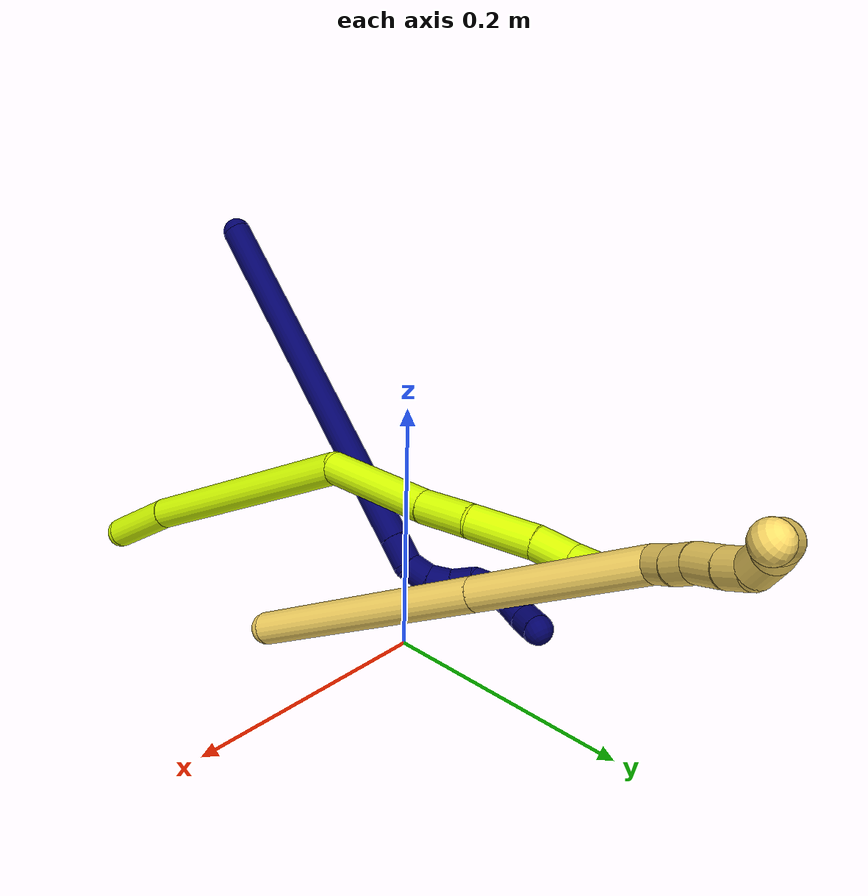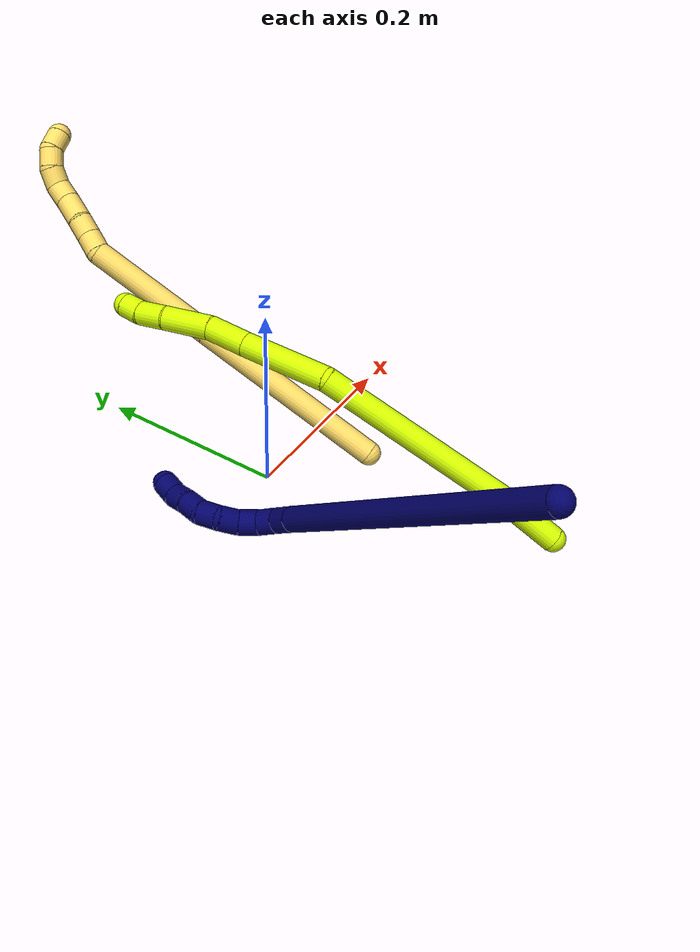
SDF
<sdf version="1.7">
 <world name="default">
  <model name="photoneo_s_sensor">
   <static>1</static>
   <pose>0 0 2 1.57079 1.57079 3.14159</pose>
   <link name="link">
    <inertial><mass>0.1</mass></inertial>
    <sensor name="sensor" type="depth">
     <update_rate>30</update_rate>
     <camera>
      <horizontal_fov>1.22</horizontal_fov>
      <image><width>1920</width><height>1200</height><format>B8G8R8</format></image>
      <clip><near>0.1</near><far>4</far></clip>
      <depth_camera><output>points</output></depth_camera>
     </camera>
     <plugin name="camera_plugin" filename="libgazebo_ros_depth_camera.so">
      <baseline>0.2</baseline>
      <alwaysOn>1</alwaysOn>
      <updateRate>0.0</updateRate>
      <cameraName>camera_ir</cameraName>
      <imageTopicName>/camera/color/image_raw</imageTopicName>
      <cameraInfoTopicName>/camera/color/camera_info</cameraInfoTopicName>
      <depthImageTopicName>/camera/depth/image_raw</depthImageTopicName>
      <depthImageCameraInfoTopicName>/camera/depth/camera_info</depthImageCameraInfoTopicName>
      <pointCloudTopicName>/camera/depth/points</pointCloudTopicName>
      <frameName>fr_optical</frameName>
      <pointCloudCutoff>0.1</pointCloudCutoff>
      <pointCloudCutoffMax>2.0</pointCloudCutoffMax>
      <distortionK1>0</distortionK1>
      <distortionK2>0</distortionK2>
      <distortionK3>0</distortionK3>
      <distortionT1>0</distortionT1>
      <distortionT2>0</distortionT2>
      <CxPrime>0</CxPrime>
      <Cx>0</Cx>
      <Cy>0</Cy>
      <focalLength>0</focalLength>
      <hackBaseline>0</hackBaseline>
     </plugin>
    </sensor>
   </link>
  </model>
  <model name="bin">
   <static>1</static>
   <link name="bottom">
    <collision name="collision-bottom">
     <pose>0 0 -0.01 0 -0 0</pose>
     <geometry><box><size>0.8 0.6 0.02</size></box></geometry>
     <surface>
      <friction><ode><mu>100</mu><mu2>100</mu2></ode></friction>
      <contact><collide_bitmask>65535</collide_bitmask></contact>
     </surface>
    </collision>
   </link>
   <link name="west_wall">
    <collision name="collision-west_wall">
     <pose>-0.41 0 0.1 0 -0 0</pose>
     <geometry><box><size>0.02 0.6 0.2</size></box></geometry>
     <surface>
      <friction><ode><mu>100</mu><mu2>100</mu2></ode></friction>
      <contact><collide_bitmask>65535</collide_bitmask></contact>
     </surface>
    </collision>
   </link>
   <link name="east_wall">
    <collision name="collision-east_wall">
     <pose>0.41 0 0.1 0 -0 0</pose>
     <geometry><box><size>0.02 0.6 0.2</size></box></geometry>
     <surface>
      <friction><ode><mu>100</mu><mu2>100</mu2></ode></friction>
      <contact><collide_bitmask>65535</collide_bitmask></contact>
     </surface>
    </collision>
   </link>
   <link name="south_wall">
    <collision name="collision-south_wall">
     <pose>0 -0.31 0.1 0 -0 0</pose>
     <geometry><box><size>0.8 0.02 0.2</size></box></geometry>
     <surface>
      <friction><ode><mu>100</mu><mu2>100</mu2></ode></friction>
      <contact><collide_bitmask>65535</collide_bitmask></contact>
     </surface>
    </collision>
   </link>
   <link name="north_wall">
    <collision name="collision-north_wall">
     <pose>0 0.31 0.1 0 -0 0</pose>
     <geometry><box><size>0.8 0.02 0.2</size></box></geometry>
     <surface>
      <friction><ode><mu>100</mu><mu2>100</mu2></ode></friction>
      <contact><collide_bitmask>65535</collide_bitmask></contact>
     </surface>
    </collision>
   </link>
  </model>
  <model name="5">
   <static>0</static>
   <link name="5">
    <collision name="collision-cylinder-e_1_1_4">
     <pose>-0.010152 0.041496 0.095689 -0.409178 -0.097033 0.020149</pose>
     <geometry><cylinder><radius>0.0125</radius><length>0.209584</length></cylinder></geometry>
     <surface>
      <friction><ode><mu>1.16</mu><mu2>1.16</mu2><slip1>0</slip1><slip2>0</slip2></ode></friction>
      <contact><ode><kp>1e+06</kp><kd>1</kd><max_vel>0</max_vel><min_depth>0.001</min_depth></ode></contact>
     </surface>
    </collision>
    <visual name="visual-cylinder-e_1_1_4">
     <pose>-0.010152 0.041496 0.095689 -0.409178 -0.097033 0.020149</pose>
     <geometry><cylinder><radius>0.0125</radius><length>0.209584</length></cylinder></geometry>
     <material><ambient>1 0.858824 0.4 1</ambient></material>
    </visual>
    <collision name="collision-cylinder-e_2_4_5">
     <pose>-0.027065 0.11046 0.254803 -0.408695 -0.097501 0.020221</pose>
     <geometry><cylinder><radius>0.0125</radius><length>0.138895</length></cylinder></geometry>
     <surface>
      <friction><ode><mu>1.16</mu><mu2>1.16</mu2><slip1>0</slip1><slip2>0</slip2></ode></friction>
      <contact><ode><kp>1e+06</kp><kd>1</kd><max_vel>0</max_vel><min_depth>0.001</min_depth></ode></contact>
     </surface>
    </collision>
    <visual name="visual-cylinder-e_2_4_5">
     <pose>-0.027065 0.11046 0.254803 -0.408695 -0.097501 0.020221</pose>
     <geometry><cylinder><radius>0.0125</radius><length>0.138895</length></cylinder></geometry>
     <material><ambient>1 0.858824 0.4 1</ambient></material>
    </visual>
    <collision name="collision-cylinder-e_3_5_6">
     <pose>-0.029735 0.14075 0.327585 -0.292871 0.396432 -0.059231</pose>
     <geometry><cylinder><radius>0.0125</radius><length>0.02119</length></cylinder></geometry>
     <surface>
      <friction><ode><mu>1.16</mu><mu2>1.16</mu2><slip1>0</slip1><slip2>0</slip2></ode></friction>
      <contact><ode><kp>1e+06</kp><kd>1</kd><max_vel>0</max_vel><min_depth>0.001</min_depth></ode></contact>
     </surface>
    </collision>
    <visual name="visual-cylinder-e_3_5_6">
     <pose>-0.029735 0.14075 0.327585 -0.292871 0.396432 -0.059231</pose>
     <geometry><cylinder><radius>0.0125</radius><length>0.02119</length></cylinder></geometry>
     <material><ambient>1 0.858824 0.4 1</ambient></material>
    </visual>
    <collision name="collision-cylinder-e_4_6_7">
     <pose>-0.022459 0.145921 0.34677 -0.234677 0.305304 -0.036267</pose>
     <geometry><cylinder><radius>0.0125</radius><length>0.021189</length></cylinder></geometry>
     <surface>
      <friction><ode><mu>1.16</mu><mu2>1.16</mu2><slip1>0</slip1><slip2>0</slip2></ode></friction>
      <contact><ode><kp>1e+06</kp><kd>1</kd><max_vel>0</max_vel><min_depth>0.001</min_depth></ode></contact>
     </surface>
    </collision>
    <visual name="visual-cylinder-e_4_6_7">
     <pose>-0.022459 0.145921 0.34677 -0.234677 0.305304 -0.036267</pose>
     <geometry><cylinder><radius>0.0125</radius><length>0.021189</length></cylinder></geometry>
     <material><ambient>1 0.858824 0.4 1</ambient></material>
    </visual>
    <collision name="collision-cylinder-e_5_7_8">
     <pose>-0.013757 0.152759 0.368503 -0.360512 0.409172 -0.075587</pose>
     <geometry><cylinder><radius>0.0125</radius><length>0.027735</length></cylinder></geometry>
     <surface>
      <friction><ode><mu>1.16</mu><mu2>1.16</mu2><slip1>0</slip1><slip2>0</slip2></ode></friction>
      <contact><ode><kp>1e+06</kp><kd>1</kd><max_vel>0</max_vel><min_depth>0.001</min_depth></ode></contact>
     </surface>
    </collision>
    <visual name="visual-cylinder-e_5_7_8">
     <pose>-0.013757 0.152759 0.368503 -0.360512 0.409172 -0.075587</pose>
     <geometry><cylinder><radius>0.0125</radius><length>0.027735</length></cylinder></geometry>
     <material><ambient>1 0.858824 0.4 1</ambient></material>
    </visual>
    <collision name="collision-cylinder-e_6_8_9">
     <pose>-0.004842 0.160571 0.389838 -0.338928 0.327549 -0.056537</pose>
     <geometry><cylinder><radius>0.0125</radius><length>0.021122</length></cylinder></geometry>
     <surface>
      <friction><ode><mu>1.16</mu><mu2>1.16</mu2><slip1>0</slip1><slip2>0</slip2></ode></friction>
      <contact><ode><kp>1e+06</kp><kd>1</kd><max_vel>0</max_vel><min_depth>0.001</min_depth></ode></contact>
     </surface>
    </collision>
    <visual name="visual-cylinder-e_6_8_9">
     <pose>-0.004842 0.160571 0.389838 -0.338928 0.327549 -0.056537</pose>
     <geometry><cylinder><radius>0.0125</radius><length>0.021122</length></cylinder></geometry>
     <material><ambient>1 0.858824 0.4 1</ambient></material>
    </visual>
    <collision name="collision-cylinder-e_7_9_10">
     <pose>4.2e-05 0.16256 0.40909 0.13523 0.148879 0.0101</pose>
     <geometry><cylinder><radius>0.0125</radius><length>0.020045</length></cylinder></geometry>
     <surface>
      <friction><ode><mu>1.16</mu><mu2>1.16</mu2><slip1>0</slip1><slip2>0</slip2></ode></friction>
      <contact><ode><kp>1e+06</kp><kd>1</kd><max_vel>0</max_vel><min_depth>0.001</min_depth></ode></contact>
     </surface>
    </collision>
    <visual name="visual-cylinder-e_7_9_10">
     <pose>4.2e-05 0.16256 0.40909 0.13523 0.148879 0.0101</pose>
     <geometry><cylinder><radius>0.0125</radius><length>0.020045</length></cylinder></geometry>
     <material><ambient>1 0.858824 0.4 1</ambient></material>
    </visual>
    <collision name="collision-cylinder-e_8_10_11">
     <pose>0.006432 0.158661 0.427343 0.295084 0.507752 0.077089</pose>
     <geometry><cylinder><radius>0.0125</radius><length>0.02017</length></cylinder></geometry>
     <surface>
      <friction><ode><mu>1.16</mu><mu2>1.16</mu2><slip1>0</slip1><slip2>0</slip2></ode></friction>
      <contact><ode><kp>1e+06</kp><kd>1</kd><max_vel>0</max_vel><min_depth>0.001</min_depth></ode></contact>
     </surface>
    </collision>
    <visual name="visual-cylinder-e_8_10_11">
     <pose>0.006432 0.158661 0.427343 0.295084 0.507752 0.077089</pose>
     <geometry><cylinder><radius>0.0125</radius><length>0.02017</length></cylinder></geometry>
     <material><ambient>1 0.858824 0.4 1</ambient></material>
    </visual>
    <collision name="collision-cylinder-e_9_11_2">
     <pose>0.01958 0.153012 0.440592 0.569756 0.964175 0.304105</pose>
     <geometry><cylinder><radius>0.0125</radius><length>0.02007</length></cylinder></geometry>
     <surface>
      <friction><ode><mu>1.16</mu><mu2>1.16</mu2><slip1>0</slip1><slip2>0</slip2></ode></friction>
      <contact><ode><kp>1e+06</kp><kd>1</kd><max_vel>0</max_vel><min_depth>0.001</min_depth></ode></contact>
     </surface>
    </collision>
    <visual name="visual-cylinder-e_9_11_2">
     <pose>0.01958 0.153012 0.440592 0.569756 0.964175 0.304105</pose>
     <geometry><cylinder><radius>0.0125</radius><length>0.02007</length></cylinder></geometry>
     <material><ambient>1 0.858824 0.4 1</ambient></material>
    </visual>
    <collision name="collision-sphere-2">
     <pose>0.027824 0.149926 0.445409 0 -0 0</pose>
     <geometry><sphere><radius>0.0125</radius></sphere></geometry>
     <surface>
      <friction><ode><mu>1.16</mu><mu2>1.16</mu2><slip1>0</slip1><slip2>0</slip2></ode></friction>
      <contact><ode><kp>1e+06</kp><kd>1</kd><max_vel>0</max_vel><min_depth>0.001</min_depth></ode></contact>
     </surface>
    </collision>
    <visual name="visual-sphere-2">
     <pose>0.027824 0.149926 0.445409 0 -0 0</pose>
     <geometry><sphere><radius>0.0125</radius></sphere></geometry>
     <material><ambient>1 0.858824 0.4 1</ambient></material>
    </visual>
    <collision name="collision-sphere-11">
     <pose>0.011335 0.156098 0.435775 0 -0 0</pose>
     <geometry><sphere><radius>0.0125</radius></sphere></geometry>
     <surface>
      <friction><ode><mu>1.16</mu><mu2>1.16</mu2><slip1>0</slip1><slip2>0</slip2></ode></friction>
      <contact><ode><kp>1e+06</kp><kd>1</kd><max_vel>0</max_vel><min_depth>0.001</min_depth></ode></contact>
     </surface>
    </collision>
    <visual name="visual-sphere-11">
     <pose>0.011335 0.156098 0.435775 0 -0 0</pose>
     <geometry><sphere><radius>0.0125</radius></sphere></geometry>
     <material><ambient>1 0.858824 0.4 1</ambient></material>
    </visual>
    <collision name="collision-sphere-10">
     <pose>0.001529 0.161223 0.418912 0 -0 0</pose>
     <geometry><sphere><radius>0.0125</radius></sphere></geometry>
     <surface>
      <friction><ode><mu>1.16</mu><mu2>1.16</mu2><slip1>0</slip1><slip2>0</slip2></ode></friction>
      <contact><ode><kp>1e+06</kp><kd>1</kd><max_vel>0</max_vel><min_depth>0.001</min_depth></ode></contact>
     </surface>
    </collision>
    <visual name="visual-sphere-10">
     <pose>0.001529 0.161223 0.418912 0 -0 0</pose>
     <geometry><sphere><radius>0.0125</radius></sphere></geometry>
     <material><ambient>1 0.858824 0.4 1</ambient></material>
    </visual>
    <collision name="collision-sphere-9">
     <pose>-0.001445 0.163896 0.399269 0 -0 0</pose>
     <geometry><sphere><radius>0.0125</radius></sphere></geometry>
     <surface>
      <friction><ode><mu>1.16</mu><mu2>1.16</mu2><slip1>0</slip1><slip2>0</slip2></ode></friction>
      <contact><ode><kp>1e+06</kp><kd>1</kd><max_vel>0</max_vel><min_depth>0.001</min_depth></ode></contact>
     </surface>
    </collision>
    <visual name="visual-sphere-9">
     <pose>-0.001445 0.163896 0.399269 0 -0 0</pose>
     <geometry><sphere><radius>0.0125</radius></sphere></geometry>
     <material><ambient>1 0.858824 0.4 1</ambient></material>
    </visual>
    <collision name="collision-sphere-4">
     <pose>-0.020305 0.082992 0.191378 0 -0 0</pose>
     <geometry><sphere><radius>0.0125</radius></sphere></geometry>
     <surface>
      <friction><ode><mu>1.16</mu><mu2>1.16</mu2><slip1>0</slip1><slip2>0</slip2></ode></friction>
      <contact><ode><kp>1e+06</kp><kd>1</kd><max_vel>0</max_vel><min_depth>0.001</min_depth></ode></contact>
     </surface>
    </collision>
    <visual name="visual-sphere-4">
     <pose>-0.020305 0.082992 0.191378 0 -0 0</pose>
     <geometry><sphere><radius>0.0125</radius></sphere></geometry>
     <material><ambient>1 0.858824 0.4 1</ambient></material>
    </visual>
    <collision name="collision-sphere-1">
     <geometry><sphere><radius>0.0125</radius></sphere></geometry>
     <surface>
      <friction><ode><mu>1.16</mu><mu2>1.16</mu2><slip1>0</slip1><slip2>0</slip2></ode></friction>
      <contact><ode><kp>1e+06</kp><kd>1</kd><max_vel>0</max_vel><min_depth>0.001</min_depth></ode></contact>
     </surface>
    </collision>
    <visual name="visual-sphere-1">
     <geometry><sphere><radius>0.0125</radius></sphere></geometry>
     <material><ambient>1 0.858824 0.4 1</ambient></material>
    </visual>
    <collision name="collision-sphere-8">
     <pose>-0.00824 0.157247 0.380408 0 -0 0</pose>
     <geometry><sphere><radius>0.0125</radius></sphere></geometry>
     <surface>
      <friction><ode><mu>1.16</mu><mu2>1.16</mu2><slip1>0</slip1><slip2>0</slip2></ode></friction>
      <contact><ode><kp>1e+06</kp><kd>1</kd><max_vel>0</max_vel><min_depth>0.001</min_depth></ode></contact>
     </surface>
    </collision>
    <visual name="visual-sphere-8">
     <pose>-0.00824 0.157247 0.380408 0 -0 0</pose>
     <geometry><sphere><radius>0.0125</radius></sphere></geometry>
     <material><ambient>1 0.858824 0.4 1</ambient></material>
    </visual>
    <collision name="collision-sphere-5">
     <pose>-0.033826 0.137928 0.318228 0 -0 0</pose>
     <geometry><sphere><radius>0.0125</radius></sphere></geometry>
     <surface>
      <friction><ode><mu>1.16</mu><mu2>1.16</mu2><slip1>0</slip1><slip2>0</slip2></ode></friction>
      <contact><ode><kp>1e+06</kp><kd>1</kd><max_vel>0</max_vel><min_depth>0.001</min_depth></ode></contact>
     </surface>
    </collision>
    <visual name="visual-sphere-5">
     <pose>-0.033826 0.137928 0.318228 0 -0 0</pose>
     <geometry><sphere><radius>0.0125</radius></sphere></geometry>
     <material><ambient>1 0.858824 0.4 1</ambient></material>
    </visual>
    <collision name="collision-sphere-6">
     <pose>-0.025644 0.143571 0.336942 0 -0 0</pose>
     <geometry><sphere><radius>0.0125</radius></sphere></geometry>
     <surface>
      <friction><ode><mu>1.16</mu><mu2>1.16</mu2><slip1>0</slip1><slip2>0</slip2></ode></friction>
      <contact><ode><kp>1e+06</kp><kd>1</kd><max_vel>0</max_vel><min_depth>0.001</min_depth></ode></contact>
     </surface>
    </collision>
    <visual name="visual-sphere-6">
     <pose>-0.025644 0.143571 0.336942 0 -0 0</pose>
     <geometry><sphere><radius>0.0125</radius></sphere></geometry>
     <material><ambient>1 0.858824 0.4 1</ambient></material>
    </visual>
    <collision name="collision-sphere-7">
     <pose>-0.019275 0.148271 0.356598 0 -0 0</pose>
     <geometry><sphere><radius>0.0125</radius></sphere></geometry>
     <surface>
      <friction><ode><mu>1.16</mu><mu2>1.16</mu2><slip1>0</slip1><slip2>0</slip2></ode></friction>
      <contact><ode><kp>1e+06</kp><kd>1</kd><max_vel>0</max_vel><min_depth>0.001</min_depth></ode></contact>
     </surface>
    </collision>
    <visual name="visual-sphere-7">
     <pose>-0.019275 0.148271 0.356598 0 -0 0</pose>
     <geometry><sphere><radius>0.0125</radius></sphere></geometry>
     <material><ambient>1 0.858824 0.4 1</ambient></material>
    </visual>
    <inertial>
     <pose>-0.013907 0.094543 0.227704 0 -0 0</pose>
     <mass>0.5</mass>
     <inertia>
      <ixx>0.001032</ixx>
      <ixy>0</ixy>
      <ixz>0</ixz>
      <iyy>0.000965</iyy>
      <iyz>0</iyz>
      <izz>-0.000271</izz>
     </inertia>
    </inertial>
   </link>
   <pose>0.076866 -0.074171 0.014382 -0.681131 0.169057 0.148665</pose>
  </model>
  <model name="7">
   <static>0</static>
   <link name="7">
    <collision name="collision-cylinder-e_1_1_4">
     <pose>0.000144 0.003424 -0.166875 -3.12108 0.000861 -0.083895</pose>
     <geometry><cylinder><radius>0.0125</radius><length>0.33382</length></cylinder></geometry>
     <surface>
      <friction><ode><mu>1.16</mu><mu2>1.16</mu2><slip1>0</slip1><slip2>0</slip2></ode></friction>
      <contact><ode><kp>1e+06</kp><kd>1</kd><max_vel>0</max_vel><min_depth>0.001</min_depth></ode></contact>
     </surface>
    </collision>
    <visual name="visual-cylinder-e_1_1_4">
     <pose>0.000144 0.003424 -0.166875 -3.12108 0.000861 -0.083895</pose>
     <geometry><cylinder><radius>0.0125</radius><length>0.33382</length></cylinder></geometry>
     <material><ambient>0.003922 0 0.403922 1</ambient></material>
    </visual>
    <collision name="collision-cylinder-e_2_4_5">
     <pose>0.000253 0.006962 -0.346483 -3.13257 -0.002707 0.582628</pose>
     <geometry><cylinder><radius>0.0125</radius><length>0.025468</length></cylinder></geometry>
     <surface>
      <friction><ode><mu>1.16</mu><mu2>1.16</mu2><slip1>0</slip1><slip2>0</slip2></ode></friction>
      <contact><ode><kp>1e+06</kp><kd>1</kd><max_vel>0</max_vel><min_depth>0.001</min_depth></ode></contact>
     </surface>
    </collision>
    <visual name="visual-cylinder-e_2_4_5">
     <pose>0.000253 0.006962 -0.346483 -3.13257 -0.002707 0.582628</pose>
     <geometry><cylinder><radius>0.0125</radius><length>0.025468</length></cylinder></geometry>
     <material><ambient>0.003922 0 0.403922 1</ambient></material>
    </visual>
    <collision name="collision-cylinder-e_3_5_6">
     <pose>-0.003316 0.010573 -0.368182 -2.76978 -0.351979 1.5148</pose>
     <geometry><cylinder><radius>0.0125</radius><length>0.020502</length></cylinder></geometry>
     <surface>
      <friction><ode><mu>1.16</mu><mu2>1.16</mu2><slip1>0</slip1><slip2>0</slip2></ode></friction>
      <contact><ode><kp>1e+06</kp><kd>1</kd><max_vel>0</max_vel><min_depth>0.001</min_depth></ode></contact>
     </surface>
    </collision>
    <visual name="visual-cylinder-e_3_5_6">
     <pose>-0.003316 0.010573 -0.368182 -2.76978 -0.351979 1.5148</pose>
     <geometry><cylinder><radius>0.0125</radius><length>0.020502</length></cylinder></geometry>
     <material><ambient>0.003922 0 0.403922 1</ambient></material>
    </visual>
    <collision name="collision-cylinder-e_4_6_7">
     <pose>-0.011549 0.020289 -0.383533 -2.36931 -0.48517 1.09356</pose>
     <geometry><cylinder><radius>0.0125</radius><length>0.020155</length></cylinder></geometry>
     <surface>
      <friction><ode><mu>1.16</mu><mu2>1.16</mu2><slip1>0</slip1><slip2>0</slip2></ode></friction>
      <contact><ode><kp>1e+06</kp><kd>1</kd><max_vel>0</max_vel><min_depth>0.001</min_depth></ode></contact>
     </surface>
    </collision>
    <visual name="visual-cylinder-e_4_6_7">
     <pose>-0.011549 0.020289 -0.383533 -2.36931 -0.48517 1.09356</pose>
     <geometry><cylinder><radius>0.0125</radius><length>0.020155</length></cylinder></geometry>
     <material><ambient>0.003922 0 0.403922 1</ambient></material>
    </visual>
    <collision name="collision-cylinder-e_5_7_8">
     <pose>-0.02004 0.034892 -0.393857 -2.01006 -0.388491 0.600847</pose>
     <geometry><cylinder><radius>0.0125</radius><length>0.020016</length></cylinder></geometry>
     <surface>
      <friction><ode><mu>1.16</mu><mu2>1.16</mu2><slip1>0</slip1><slip2>0</slip2></ode></friction>
      <contact><ode><kp>1e+06</kp><kd>1</kd><max_vel>0</max_vel><min_depth>0.001</min_depth></ode></contact>
     </surface>
    </collision>
    <visual name="visual-cylinder-e_5_7_8">
     <pose>-0.02004 0.034892 -0.393857 -2.01006 -0.388491 0.600847</pose>
     <geometry><cylinder><radius>0.0125</radius><length>0.020016</length></cylinder></geometry>
     <material><ambient>0.003922 0 0.403922 1</ambient></material>
    </visual>
    <collision name="collision-cylinder-e_6_8_9">
     <pose>-0.025154 0.049891 -0.405194 -2.41194 -0.132521 0.344059</pose>
     <geometry><cylinder><radius>0.0125</radius><length>0.020024</length></cylinder></geometry>
     <surface>
      <friction><ode><mu>1.16</mu><mu2>1.16</mu2><slip1>0</slip1><slip2>0</slip2></ode></friction>
      <contact><ode><kp>1e+06</kp><kd>1</kd><max_vel>0</max_vel><min_depth>0.001</min_depth></ode></contact>
     </surface>
    </collision>
    <visual name="visual-cylinder-e_6_8_9">
     <pose>-0.025154 0.049891 -0.405194 -2.41194 -0.132521 0.344059</pose>
     <geometry><cylinder><radius>0.0125</radius><length>0.020024</length></cylinder></geometry>
     <material><ambient>0.003922 0 0.403922 1</ambient></material>
    </visual>
    <collision name="collision-cylinder-e_7_9_10">
     <pose>-0.024092 0.062001 -0.420606 -2.5406 0.240624 -0.743946</pose>
     <geometry><cylinder><radius>0.0125</radius><length>0.020011</length></cylinder></geometry>
     <surface>
      <friction><ode><mu>1.16</mu><mu2>1.16</mu2><slip1>0</slip1><slip2>0</slip2></ode></friction>
      <contact><ode><kp>1e+06</kp><kd>1</kd><max_vel>0</max_vel><min_depth>0.001</min_depth></ode></contact>
     </surface>
    </collision>
    <visual name="visual-cylinder-e_7_9_10">
     <pose>-0.024092 0.062001 -0.420606 -2.5406 0.240624 -0.743946</pose>
     <geometry><cylinder><radius>0.0125</radius><length>0.020011</length></cylinder></geometry>
     <material><ambient>0.003922 0 0.403922 1</ambient></material>
    </visual>
    <collision name="collision-cylinder-e_8_10_11">
     <pose>-0.019726 0.071358 -0.43763 -2.73661 0.199538 -0.90731</pose>
     <geometry><cylinder><radius>0.0125</radius><length>0.020001</length></cylinder></geometry>
     <surface>
      <friction><ode><mu>1.16</mu><mu2>1.16</mu2><slip1>0</slip1><slip2>0</slip2></ode></friction>
      <contact><ode><kp>1e+06</kp><kd>1</kd><max_vel>0</max_vel><min_depth>0.001</min_depth></ode></contact>
     </surface>
    </collision>
    <visual name="visual-cylinder-e_8_10_11">
     <pose>-0.019726 0.071358 -0.43763 -2.73661 0.199538 -0.90731</pose>
     <geometry><cylinder><radius>0.0125</radius><length>0.020001</length></cylinder></geometry>
     <material><ambient>0.003922 0 0.403922 1</ambient></material>
    </visual>
    <collision name="collision-cylinder-e_9_11_2">
     <pose>-0.01386 0.080863 -0.453926 -2.48272 0.398806 -1.06767</pose>
     <geometry><cylinder><radius>0.0125</radius><length>0.020003</length></cylinder></geometry>
     <surface>
      <friction><ode><mu>1.16</mu><mu2>1.16</mu2><slip1>0</slip1><slip2>0</slip2></ode></friction>
      <contact><ode><kp>1e+06</kp><kd>1</kd><max_vel>0</max_vel><min_depth>0.001</min_depth></ode></contact>
     </surface>
    </collision>
    <visual name="visual-cylinder-e_9_11_2">
     <pose>-0.01386 0.080863 -0.453926 -2.48272 0.398806 -1.06767</pose>
     <geometry><cylinder><radius>0.0125</radius><length>0.020003</length></cylinder></geometry>
     <material><ambient>0.003922 0 0.403922 1</ambient></material>
    </visual>
    <collision name="collision-sphere-2">
     <pose>-0.009976 0.086505 -0.461213 0 -0 0</pose>
     <geometry><sphere><radius>0.0125</radius></sphere></geometry>
     <surface>
      <friction><ode><mu>1.16</mu><mu2>1.16</mu2><slip1>0</slip1><slip2>0</slip2></ode></friction>
      <contact><ode><kp>1e+06</kp><kd>1</kd><max_vel>0</max_vel><min_depth>0.001</min_depth></ode></contact>
     </surface>
    </collision>
    <visual name="visual-sphere-2">
     <pose>-0.009976 0.086505 -0.461213 0 -0 0</pose>
     <geometry><sphere><radius>0.0125</radius></sphere></geometry>
     <material><ambient>0.003922 0 0.403922 1</ambient></material>
    </visual>
    <collision name="collision-sphere-11">
     <pose>-0.017743 0.07522 -0.446639 0 -0 0</pose>
     <geometry><sphere><radius>0.0125</radius></sphere></geometry>
     <surface>
      <friction><ode><mu>1.16</mu><mu2>1.16</mu2><slip1>0</slip1><slip2>0</slip2></ode></friction>
      <contact><ode><kp>1e+06</kp><kd>1</kd><max_vel>0</max_vel><min_depth>0.001</min_depth></ode></contact>
     </surface>
    </collision>
    <visual name="visual-sphere-11">
     <pose>-0.017743 0.07522 -0.446639 0 -0 0</pose>
     <geometry><sphere><radius>0.0125</radius></sphere></geometry>
     <material><ambient>0.003922 0 0.403922 1</ambient></material>
    </visual>
    <collision name="collision-sphere-10">
     <pose>-0.021708 0.067496 -0.42862 0 -0 0</pose>
     <geometry><sphere><radius>0.0125</radius></sphere></geometry>
     <surface>
      <friction><ode><mu>1.16</mu><mu2>1.16</mu2><slip1>0</slip1><slip2>0</slip2></ode></friction>
      <contact><ode><kp>1e+06</kp><kd>1</kd><max_vel>0</max_vel><min_depth>0.001</min_depth></ode></contact>
     </surface>
    </collision>
    <visual name="visual-sphere-10">
     <pose>-0.021708 0.067496 -0.42862 0 -0 0</pose>
     <geometry><sphere><radius>0.0125</radius></sphere></geometry>
     <material><ambient>0.003922 0 0.403922 1</ambient></material>
    </visual>
    <collision name="collision-sphere-9">
     <pose>-0.026477 0.056506 -0.412591 0 -0 0</pose>
     <geometry><sphere><radius>0.0125</radius></sphere></geometry>
     <surface>
      <friction><ode><mu>1.16</mu><mu2>1.16</mu2><slip1>0</slip1><slip2>0</slip2></ode></friction>
      <contact><ode><kp>1e+06</kp><kd>1</kd><max_vel>0</max_vel><min_depth>0.001</min_depth></ode></contact>
     </surface>
    </collision>
    <visual name="visual-sphere-9">
     <pose>-0.026477 0.056506 -0.412591 0 -0 0</pose>
     <geometry><sphere><radius>0.0125</radius></sphere></geometry>
     <material><ambient>0.003922 0 0.403922 1</ambient></material>
    </visual>
    <collision name="collision-sphere-4">
     <pose>0.000287 0.006847 -0.33375 0 -0 0</pose>
     <geometry><sphere><radius>0.0125</radius></sphere></geometry>
     <surface>
      <friction><ode><mu>1.16</mu><mu2>1.16</mu2><slip1>0</slip1><slip2>0</slip2></ode></friction>
      <contact><ode><kp>1e+06</kp><kd>1</kd><max_vel>0</max_vel><min_depth>0.001</min_depth></ode></contact>
     </surface>
    </collision>
    <visual name="visual-sphere-4">
     <pose>0.000287 0.006847 -0.33375 0 -0 0</pose>
     <geometry><sphere><radius>0.0125</radius></sphere></geometry>
     <material><ambient>0.003922 0 0.403922 1</ambient></material>
    </visual>
    <collision name="collision-sphere-1">
     <geometry><sphere><radius>0.0125</radius></sphere></geometry>
     <surface>
      <friction><ode><mu>1.16</mu><mu2>1.16</mu2><slip1>0</slip1><slip2>0</slip2></ode></friction>
      <contact><ode><kp>1e+06</kp><kd>1</kd><max_vel>0</max_vel><min_depth>0.001</min_depth></ode></contact>
     </surface>
    </collision>
    <visual name="visual-sphere-1">
     <geometry><sphere><radius>0.0125</radius></sphere></geometry>
     <material><ambient>0.003922 0 0.403922 1</ambient></material>
    </visual>
    <collision name="collision-sphere-8">
     <pose>-0.023831 0.043275 -0.397796 0 -0 0</pose>
     <geometry><sphere><radius>0.0125</radius></sphere></geometry>
     <surface>
      <friction><ode><mu>1.16</mu><mu2>1.16</mu2><slip1>0</slip1><slip2>0</slip2></ode></friction>
      <contact><ode><kp>1e+06</kp><kd>1</kd><max_vel>0</max_vel><min_depth>0.001</min_depth></ode></contact>
     </surface>
    </collision>
    <visual name="visual-sphere-8">
     <pose>-0.023831 0.043275 -0.397796 0 -0 0</pose>
     <geometry><sphere><radius>0.0125</radius></sphere></geometry>
     <material><ambient>0.003922 0 0.403922 1</ambient></material>
    </visual>
    <collision name="collision-sphere-5">
     <pose>0.000218 0.007077 -0.359217 0 -0 0</pose>
     <geometry><sphere><radius>0.0125</radius></sphere></geometry>
     <surface>
      <friction><ode><mu>1.16</mu><mu2>1.16</mu2><slip1>0</slip1><slip2>0</slip2></ode></friction>
      <contact><ode><kp>1e+06</kp><kd>1</kd><max_vel>0</max_vel><min_depth>0.001</min_depth></ode></contact>
     </surface>
    </collision>
    <visual name="visual-sphere-5">
     <pose>0.000218 0.007077 -0.359217 0 -0 0</pose>
     <geometry><sphere><radius>0.0125</radius></sphere></geometry>
     <material><ambient>0.003922 0 0.403922 1</ambient></material>
    </visual>
    <collision name="collision-sphere-6">
     <pose>-0.00685 0.014069 -0.377147 0 -0 0</pose>
     <geometry><sphere><radius>0.0125</radius></sphere></geometry>
     <surface>
      <friction><ode><mu>1.16</mu><mu2>1.16</mu2><slip1>0</slip1><slip2>0</slip2></ode></friction>
      <contact><ode><kp>1e+06</kp><kd>1</kd><max_vel>0</max_vel><min_depth>0.001</min_depth></ode></contact>
     </surface>
    </collision>
    <visual name="visual-sphere-6">
     <pose>-0.00685 0.014069 -0.377147 0 -0 0</pose>
     <geometry><sphere><radius>0.0125</radius></sphere></geometry>
     <material><ambient>0.003922 0 0.403922 1</ambient></material>
    </visual>
    <collision name="collision-sphere-7">
     <pose>-0.016249 0.026509 -0.389918 0 -0 0</pose>
     <geometry><sphere><radius>0.0125</radius></sphere></geometry>
     <surface>
      <friction><ode><mu>1.16</mu><mu2>1.16</mu2><slip1>0</slip1><slip2>0</slip2></ode></friction>
      <contact><ode><kp>1e+06</kp><kd>1</kd><max_vel>0</max_vel><min_depth>0.001</min_depth></ode></contact>
     </surface>
    </collision>
    <visual name="visual-sphere-7">
     <pose>-0.016249 0.026509 -0.389918 0 -0 0</pose>
     <geometry><sphere><radius>0.0125</radius></sphere></geometry>
     <material><ambient>0.003922 0 0.403922 1</ambient></material>
    </visual>
    <inertial>
     <pose>-0.00461 0.015858 -0.244111 0 -0 0</pose>
     <mass>0.5</mass>
     <inertia>
      <ixx>0.00285</ixx>
      <ixy>0</ixy>
      <ixz>0</ixz>
      <iyy>-0.003358</iyy>
      <iyz>0</iyz>
      <izz>-0.000108</izz>
     </inertia>
    </inertial>
   </link>
   <pose>-0.116944 -0.334785 0.241832 0.858482 -0.282879 0.03551</pose>
  </model>
  <model name="15">
   <static>0</static>
   <link name="15">
    <collision name="collision-cylinder-e_1_1_4">
     <pose>0.001973 0.027099 0.017488 -0.997698 0.061089 -0.033289</pose>
     <geometry><cylinder><radius>0.0125</radius><length>0.064624</length></cylinder></geometry>
     <surface>
      <friction><ode><mu>1.16</mu><mu2>1.16</mu2><slip1>0</slip1><slip2>0</slip2></ode></friction>
      <contact><ode><kp>1e+06</kp><kd>1</kd><max_vel>0</max_vel><min_depth>0.001</min_depth></ode></contact>
     </surface>
    </collision>
    <visual name="visual-cylinder-e_1_1_4">
     <pose>0.001973 0.027099 0.017488 -0.997698 0.061089 -0.033289</pose>
     <geometry><cylinder><radius>0.0125</radius><length>0.064624</length></cylinder></geometry>
     <material><ambient>0.835294 1 0 1</ambient></material>
    </visual>
    <collision name="collision-cylinder-e_2_4_5">
     <pose>0.009675 0.131424 0.097328 -0.891561 0.057662 -0.02756</pose>
     <geometry><cylinder><radius>0.0125</radius><length>0.198841</length></cylinder></geometry>
     <surface>
      <friction><ode><mu>1.16</mu><mu2>1.16</mu2><slip1>0</slip1><slip2>0</slip2></ode></friction>
      <contact><ode><kp>1e+06</kp><kd>1</kd><max_vel>0</max_vel><min_depth>0.001</min_depth></ode></contact>
     </surface>
    </collision>
    <visual name="visual-cylinder-e_2_4_5">
     <pose>0.009675 0.131424 0.097328 -0.891561 0.057662 -0.02756</pose>
     <geometry><cylinder><radius>0.0125</radius><length>0.198841</length></cylinder></geometry>
     <material><ambient>0.835294 1 0 1</ambient></material>
    </visual>
    <collision name="collision-cylinder-e_3_5_6">
     <pose>0.006492 0.228919 0.200718 -0.458777 -0.192317 0.045037</pose>
     <geometry><cylinder><radius>0.0125</radius><length>0.09326</length></cylinder></geometry>
     <surface>
      <friction><ode><mu>1.16</mu><mu2>1.16</mu2><slip1>0</slip1><slip2>0</slip2></ode></friction>
      <contact><ode><kp>1e+06</kp><kd>1</kd><max_vel>0</max_vel><min_depth>0.001</min_depth></ode></contact>
     </surface>
    </collision>
    <visual name="visual-cylinder-e_3_5_6">
     <pose>0.006492 0.228919 0.200718 -0.458777 -0.192317 0.045037</pose>
     <geometry><cylinder><radius>0.0125</radius><length>0.09326</length></cylinder></geometry>
     <material><ambient>0.835294 1 0 1</ambient></material>
    </visual>
    <collision name="collision-cylinder-e_4_6_7">
     <pose>-0.005531 0.2598 0.259927 -0.528548 -0.146734 0.039773</pose>
     <geometry><cylinder><radius>0.0125</radius><length>0.042544</length></cylinder></geometry>
     <surface>
      <friction><ode><mu>1.16</mu><mu2>1.16</mu2><slip1>0</slip1><slip2>0</slip2></ode></friction>
      <contact><ode><kp>1e+06</kp><kd>1</kd><max_vel>0</max_vel><min_depth>0.001</min_depth></ode></contact>
     </surface>
    </collision>
    <visual name="visual-cylinder-e_4_6_7">
     <pose>-0.005531 0.2598 0.259927 -0.528548 -0.146734 0.039773</pose>
     <geometry><cylinder><radius>0.0125</radius><length>0.042544</length></cylinder></geometry>
     <material><ambient>0.835294 1 0 1</ambient></material>
    </visual>
    <collision name="collision-cylinder-e_5_7_8">
     <pose>-0.00822 0.280082 0.301174 -0.396851 0.016796 -0.003377</pose>
     <geometry><cylinder><radius>0.0125</radius><length>0.050047</length></cylinder></geometry>
     <surface>
      <friction><ode><mu>1.16</mu><mu2>1.16</mu2><slip1>0</slip1><slip2>0</slip2></ode></friction>
      <contact><ode><kp>1e+06</kp><kd>1</kd><max_vel>0</max_vel><min_depth>0.001</min_depth></ode></contact>
     </surface>
    </collision>
    <visual name="visual-cylinder-e_5_7_8">
     <pose>-0.00822 0.280082 0.301174 -0.396851 0.016796 -0.003377</pose>
     <geometry><cylinder><radius>0.0125</radius><length>0.050047</length></cylinder></geometry>
     <material><ambient>0.835294 1 0 1</ambient></material>
    </visual>
    <collision name="collision-cylinder-e_6_8_9">
     <pose>-0.009205 0.294246 0.338359 -0.308288 -0.094598 0.014709</pose>
     <geometry><cylinder><radius>0.0125</radius><length>0.02975</length></cylinder></geometry>
     <surface>
      <friction><ode><mu>1.16</mu><mu2>1.16</mu2><slip1>0</slip1><slip2>0</slip2></ode></friction>
      <contact><ode><kp>1e+06</kp><kd>1</kd><max_vel>0</max_vel><min_depth>0.001</min_depth></ode></contact>
     </surface>
    </collision>
    <visual name="visual-cylinder-e_6_8_9">
     <pose>-0.009205 0.294246 0.338359 -0.308288 -0.094598 0.014709</pose>
     <geometry><cylinder><radius>0.0125</radius><length>0.02975</length></cylinder></geometry>
     <material><ambient>0.835294 1 0 1</ambient></material>
    </visual>
    <collision name="collision-cylinder-e_7_9_2">
     <pose>-0.013086 0.303596 0.361406 -0.497837 -0.238768 0.060964</pose>
     <geometry><cylinder><radius>0.0125</radius><length>0.020935</length></cylinder></geometry>
     <surface>
      <friction><ode><mu>1.16</mu><mu2>1.16</mu2><slip1>0</slip1><slip2>0</slip2></ode></friction>
      <contact><ode><kp>1e+06</kp><kd>1</kd><max_vel>0</max_vel><min_depth>0.001</min_depth></ode></contact>
     </surface>
    </collision>
    <visual name="visual-cylinder-e_7_9_2">
     <pose>-0.013086 0.303596 0.361406 -0.497837 -0.238768 0.060964</pose>
     <geometry><cylinder><radius>0.0125</radius><length>0.020935</length></cylinder></geometry>
     <material><ambient>0.835294 1 0 1</ambient></material>
    </visual>
    <collision name="collision-sphere-2">
     <pose>-0.015561 0.308453 0.370341 0 -0 0</pose>
     <geometry><sphere><radius>0.0125</radius></sphere></geometry>
     <surface>
      <friction><ode><mu>1.16</mu><mu2>1.16</mu2><slip1>0</slip1><slip2>0</slip2></ode></friction>
      <contact><ode><kp>1e+06</kp><kd>1</kd><max_vel>0</max_vel><min_depth>0.001</min_depth></ode></contact>
     </surface>
    </collision>
    <visual name="visual-sphere-2">
     <pose>-0.015561 0.308453 0.370341 0 -0 0</pose>
     <geometry><sphere><radius>0.0125</radius></sphere></geometry>
     <material><ambient>0.835294 1 0 1</ambient></material>
    </visual>
    <collision name="collision-sphere-9">
     <pose>-0.01061 0.298739 0.35247 0 -0 0</pose>
     <geometry><sphere><radius>0.0125</radius></sphere></geometry>
     <surface>
      <friction><ode><mu>1.16</mu><mu2>1.16</mu2><slip1>0</slip1><slip2>0</slip2></ode></friction>
      <contact><ode><kp>1e+06</kp><kd>1</kd><max_vel>0</max_vel><min_depth>0.001</min_depth></ode></contact>
     </surface>
    </collision>
    <visual name="visual-sphere-9">
     <pose>-0.01061 0.298739 0.35247 0 -0 0</pose>
     <geometry><sphere><radius>0.0125</radius></sphere></geometry>
     <material><ambient>0.835294 1 0 1</ambient></material>
    </visual>
    <collision name="collision-sphere-4">
     <pose>0.003945 0.054198 0.034976 0 -0 0</pose>
     <geometry><sphere><radius>0.0125</radius></sphere></geometry>
     <surface>
      <friction><ode><mu>1.16</mu><mu2>1.16</mu2><slip1>0</slip1><slip2>0</slip2></ode></friction>
      <contact><ode><kp>1e+06</kp><kd>1</kd><max_vel>0</max_vel><min_depth>0.001</min_depth></ode></contact>
     </surface>
    </collision>
    <visual name="visual-sphere-4">
     <pose>0.003945 0.054198 0.034976 0 -0 0</pose>
     <geometry><sphere><radius>0.0125</radius></sphere></geometry>
     <material><ambient>0.835294 1 0 1</ambient></material>
    </visual>
    <collision name="collision-sphere-1">
     <geometry><sphere><radius>0.0125</radius></sphere></geometry>
     <surface>
      <friction><ode><mu>1.16</mu><mu2>1.16</mu2><slip1>0</slip1><slip2>0</slip2></ode></friction>
      <contact><ode><kp>1e+06</kp><kd>1</kd><max_vel>0</max_vel><min_depth>0.001</min_depth></ode></contact>
     </surface>
    </collision>
    <visual name="visual-sphere-1">
     <geometry><sphere><radius>0.0125</radius></sphere></geometry>
     <material><ambient>0.835294 1 0 1</ambient></material>
    </visual>
    <collision name="collision-sphere-8">
     <pose>-0.0078 0.289753 0.324249 0 -0 0</pose>
     <geometry><sphere><radius>0.0125</radius></sphere></geometry>
     <surface>
      <friction><ode><mu>1.16</mu><mu2>1.16</mu2><slip1>0</slip1><slip2>0</slip2></ode></friction>
      <contact><ode><kp>1e+06</kp><kd>1</kd><max_vel>0</max_vel><min_depth>0.001</min_depth></ode></contact>
     </surface>
    </collision>
    <visual name="visual-sphere-8">
     <pose>-0.0078 0.289753 0.324249 0 -0 0</pose>
     <geometry><sphere><radius>0.0125</radius></sphere></geometry>
     <material><ambient>0.835294 1 0 1</ambient></material>
    </visual>
    <collision name="collision-sphere-5">
     <pose>0.015405 0.208649 0.15968 0 -0 0</pose>
     <geometry><sphere><radius>0.0125</radius></sphere></geometry>
     <surface>
      <friction><ode><mu>1.16</mu><mu2>1.16</mu2><slip1>0</slip1><slip2>0</slip2></ode></friction>
      <contact><ode><kp>1e+06</kp><kd>1</kd><max_vel>0</max_vel><min_depth>0.001</min_depth></ode></contact>
     </surface>
    </collision>
    <visual name="visual-sphere-5">
     <pose>0.015405 0.208649 0.15968 0 -0 0</pose>
     <geometry><sphere><radius>0.0125</radius></sphere></geometry>
     <material><ambient>0.835294 1 0 1</ambient></material>
    </visual>
    <collision name="collision-sphere-6">
     <pose>-0.00242 0.249188 0.241755 0 -0 0</pose>
     <geometry><sphere><radius>0.0125</radius></sphere></geometry>
     <surface>
      <friction><ode><mu>1.16</mu><mu2>1.16</mu2><slip1>0</slip1><slip2>0</slip2></ode></friction>
      <contact><ode><kp>1e+06</kp><kd>1</kd><max_vel>0</max_vel><min_depth>0.001</min_depth></ode></contact>
     </surface>
    </collision>
    <visual name="visual-sphere-6">
     <pose>-0.00242 0.249188 0.241755 0 -0 0</pose>
     <geometry><sphere><radius>0.0125</radius></sphere></geometry>
     <material><ambient>0.835294 1 0 1</ambient></material>
    </visual>
    <collision name="collision-sphere-7">
     <pose>-0.008641 0.270411 0.278098 0 -0 0</pose>
     <geometry><sphere><radius>0.0125</radius></sphere></geometry>
     <surface>
      <friction><ode><mu>1.16</mu><mu2>1.16</mu2><slip1>0</slip1><slip2>0</slip2></ode></friction>
      <contact><ode><kp>1e+06</kp><kd>1</kd><max_vel>0</max_vel><min_depth>0.001</min_depth></ode></contact>
     </surface>
    </collision>
    <visual name="visual-sphere-7">
     <pose>-0.008641 0.270411 0.278098 0 -0 0</pose>
     <geometry><sphere><radius>0.0125</radius></sphere></geometry>
     <material><ambient>0.835294 1 0 1</ambient></material>
    </visual>
    <inertial>
     <pose>0.002924 0.178824 0.16593 0 -0 0</pose>
     <mass>0.5</mass>
     <inertia>
      <ixx>0.000765</ixx>
      <ixy>0</ixy>
      <ixz>0</ixz>
      <iyy>0.000526</iyy>
      <iyz>0</iyz>
      <izz>-0.000573</izz>
     </inertia>
    </inertial>
   </link>
   <pose>0.069796 -0.281966 0.014687 1.99336 -0.072496 -2.9498</pose>
  </model>
 </world>
</sdf>
